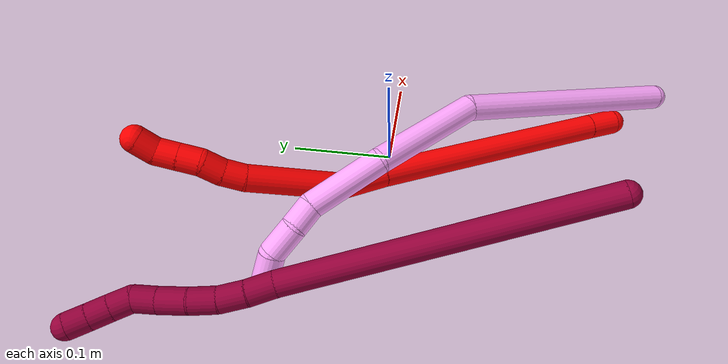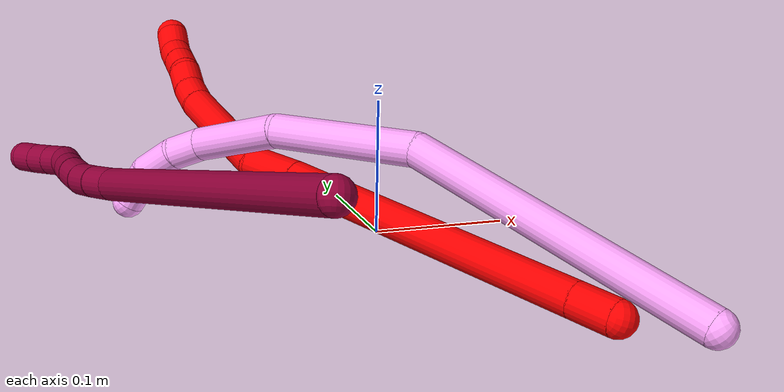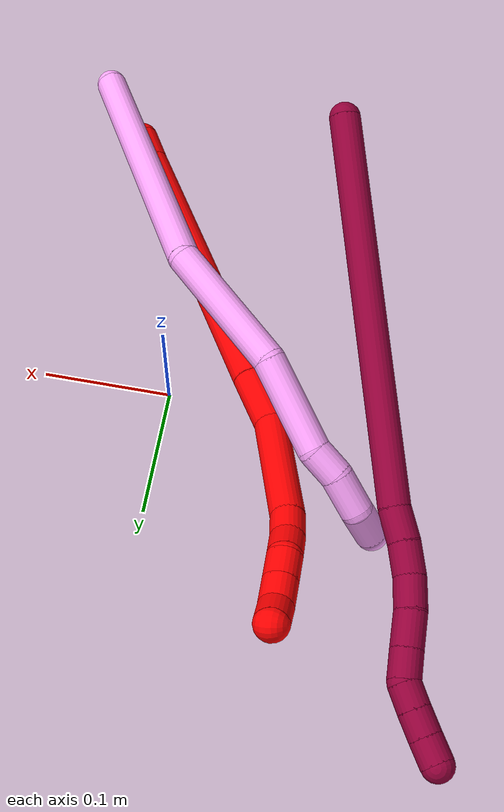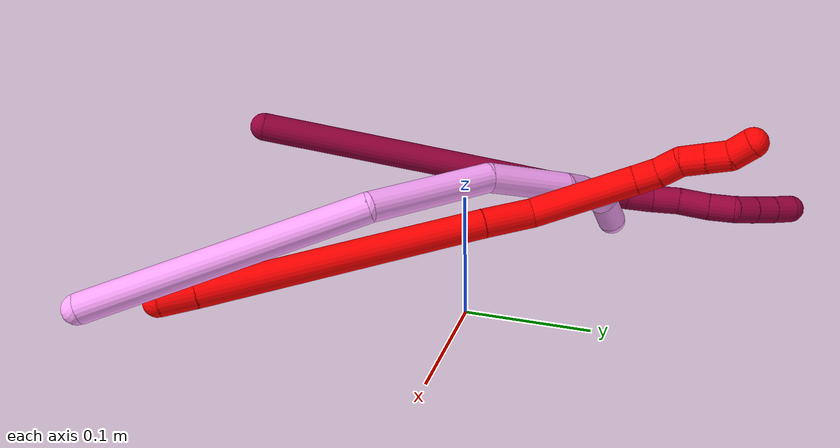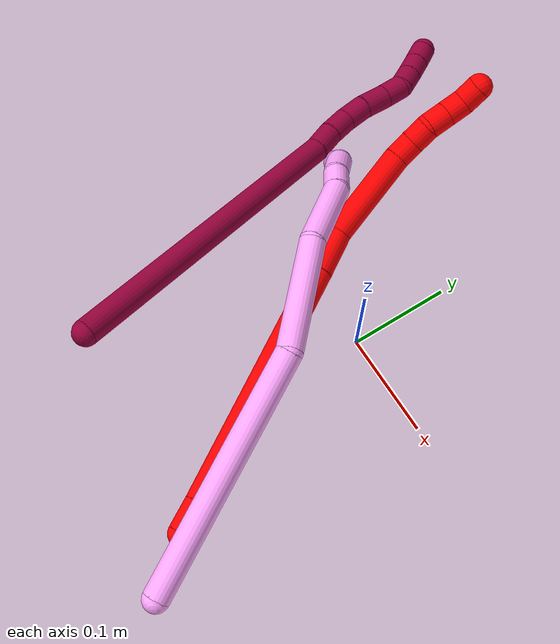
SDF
<sdf version="1.7">
 <world name="default">
  <model name="2">
   <static>0</static>
   <link name="2">
    <collision name="collision-cylinder-e_1_1_4">
     <pose>-0.001662 0.012624 0.007644 -1.02635 -0.112139 0.06324</pose>
     <geometry><cylinder><radius>0.0125</radius><length>0.029701</length></cylinder></geometry>
     <surface>
      <friction><ode><mu>1.16</mu><mu2>1.16</mu2><slip1>0</slip1><slip2>0</slip2></ode></friction>
      <contact><ode><kp>1e+06</kp><kd>1</kd><max_vel>0</max_vel><min_depth>0.001</min_depth></ode></contact>
     </surface>
    </collision>
    <visual name="visual-cylinder-e_1_1_4">
     <pose>-0.001662 0.012624 0.007644 -1.02635 -0.112139 0.06324</pose>
     <geometry><cylinder><radius>0.0125</radius><length>0.029701</length></cylinder></geometry>
     <material><ambient>1 0 0 1</ambient></material>
    </visual>
    <collision name="collision-cylinder-e_2_4_5">
     <pose>-0.015924 0.124143 0.07879 -0.999979 -0.1068 0.058382</pose>
     <geometry><cylinder><radius>0.0125</radius><length>0.236404</length></cylinder></geometry>
     <surface>
      <friction><ode><mu>1.16</mu><mu2>1.16</mu2><slip1>0</slip1><slip2>0</slip2></ode></friction>
      <contact><ode><kp>1e+06</kp><kd>1</kd><max_vel>0</max_vel><min_depth>0.001</min_depth></ode></contact>
     </surface>
    </collision>
    <visual name="visual-cylinder-e_2_4_5">
     <pose>-0.015924 0.124143 0.07879 -0.999979 -0.1068 0.058382</pose>
     <geometry><cylinder><radius>0.0125</radius><length>0.236404</length></cylinder></geometry>
     <material><ambient>1 0 0 1</ambient></material>
    </visual>
    <collision name="collision-cylinder-e_3_5_6">
     <pose>-0.031841 0.240827 0.15409 -0.985228 -0.15417 0.082868</pose>
     <geometry><cylinder><radius>0.0125</radius><length>0.043202</length></cylinder></geometry>
     <surface>
      <friction><ode><mu>1.16</mu><mu2>1.16</mu2><slip1>0</slip1><slip2>0</slip2></ode></friction>
      <contact><ode><kp>1e+06</kp><kd>1</kd><max_vel>0</max_vel><min_depth>0.001</min_depth></ode></contact>
     </surface>
    </collision>
    <visual name="visual-cylinder-e_3_5_6">
     <pose>-0.031841 0.240827 0.15409 -0.985228 -0.15417 0.082868</pose>
     <geometry><cylinder><radius>0.0125</radius><length>0.043202</length></cylinder></geometry>
     <material><ambient>1 0 0 1</ambient></material>
    </visual>
    <collision name="collision-cylinder-e_4_6_7">
     <pose>-0.028851 0.299595 0.183281 -1.16936 0.140743 -0.093241</pose>
     <geometry><cylinder><radius>0.0125</radius><length>0.089925</length></cylinder></geometry>
     <surface>
      <friction><ode><mu>1.16</mu><mu2>1.16</mu2><slip1>0</slip1><slip2>0</slip2></ode></friction>
      <contact><ode><kp>1e+06</kp><kd>1</kd><max_vel>0</max_vel><min_depth>0.001</min_depth></ode></contact>
     </surface>
    </collision>
    <visual name="visual-cylinder-e_4_6_7">
     <pose>-0.028851 0.299595 0.183281 -1.16936 0.140743 -0.093241</pose>
     <geometry><cylinder><radius>0.0125</radius><length>0.089925</length></cylinder></geometry>
     <material><ambient>1 0 0 1</ambient></material>
    </visual>
    <collision name="collision-cylinder-e_5_7_8">
     <pose>-0.019954 0.350157 0.203383 -1.29549 0.2544 -0.192937</pose>
     <geometry><cylinder><radius>0.0125</radius><length>0.02058</length></cylinder></geometry>
     <surface>
      <friction><ode><mu>1.16</mu><mu2>1.16</mu2><slip1>0</slip1><slip2>0</slip2></ode></friction>
      <contact><ode><kp>1e+06</kp><kd>1</kd><max_vel>0</max_vel><min_depth>0.001</min_depth></ode></contact>
     </surface>
    </collision>
    <visual name="visual-cylinder-e_5_7_8">
     <pose>-0.019954 0.350157 0.203383 -1.29549 0.2544 -0.192937</pose>
     <geometry><cylinder><radius>0.0125</radius><length>0.02058</length></cylinder></geometry>
     <material><ambient>1 0 0 1</ambient></material>
    </visual>
    <collision name="collision-cylinder-e_6_8_9">
     <pose>-0.012827 0.368444 0.208359 -1.31574 0.467188 -0.363648</pose>
     <geometry><cylinder><radius>0.0125</radius><length>0.020147</length></cylinder></geometry>
     <surface>
      <friction><ode><mu>1.16</mu><mu2>1.16</mu2><slip1>0</slip1><slip2>0</slip2></ode></friction>
      <contact><ode><kp>1e+06</kp><kd>1</kd><max_vel>0</max_vel><min_depth>0.001</min_depth></ode></contact>
     </surface>
    </collision>
    <visual name="visual-cylinder-e_6_8_9">
     <pose>-0.012827 0.368444 0.208359 -1.31574 0.467188 -0.363648</pose>
     <geometry><cylinder><radius>0.0125</radius><length>0.020147</length></cylinder></geometry>
     <material><ambient>1 0 0 1</ambient></material>
    </visual>
    <collision name="collision-cylinder-e_7_9_10">
     <pose>-0.006922 0.387011 0.211673 -1.46527 0.137049 -0.123336</pose>
     <geometry><cylinder><radius>0.0125</radius><length>0.020027</length></cylinder></geometry>
     <surface>
      <friction><ode><mu>1.16</mu><mu2>1.16</mu2><slip1>0</slip1><slip2>0</slip2></ode></friction>
      <contact><ode><kp>1e+06</kp><kd>1</kd><max_vel>0</max_vel><min_depth>0.001</min_depth></ode></contact>
     </surface>
    </collision>
    <visual name="visual-cylinder-e_7_9_10">
     <pose>-0.006922 0.387011 0.211673 -1.46527 0.137049 -0.123336</pose>
     <geometry><cylinder><radius>0.0125</radius><length>0.020027</length></cylinder></geometry>
     <material><ambient>1 0 0 1</ambient></material>
    </visual>
    <collision name="collision-cylinder-e_8_10_11">
     <pose>-0.004194 0.40673 0.213741 -1.46738 0.136456 -0.123063</pose>
     <geometry><cylinder><radius>0.0125</radius><length>0.020001</length></cylinder></geometry>
     <surface>
      <friction><ode><mu>1.16</mu><mu2>1.16</mu2><slip1>0</slip1><slip2>0</slip2></ode></friction>
      <contact><ode><kp>1e+06</kp><kd>1</kd><max_vel>0</max_vel><min_depth>0.001</min_depth></ode></contact>
     </surface>
    </collision>
    <visual name="visual-cylinder-e_8_10_11">
     <pose>-0.004194 0.40673 0.213741 -1.46738 0.136456 -0.123063</pose>
     <geometry><cylinder><radius>0.0125</radius><length>0.020001</length></cylinder></geometry>
     <material><ambient>1 0 0 1</ambient></material>
    </visual>
    <collision name="collision-cylinder-e_9_11_2">
     <pose>0.002555 0.424792 0.216697 -1.33943 0.568695 -0.454821</pose>
     <geometry><cylinder><radius>0.0125</radius><length>0.020013</length></cylinder></geometry>
     <surface>
      <friction><ode><mu>1.16</mu><mu2>1.16</mu2><slip1>0</slip1><slip2>0</slip2></ode></friction>
      <contact><ode><kp>1e+06</kp><kd>1</kd><max_vel>0</max_vel><min_depth>0.001</min_depth></ode></contact>
     </surface>
    </collision>
    <visual name="visual-cylinder-e_9_11_2">
     <pose>0.002555 0.424792 0.216697 -1.33943 0.568695 -0.454821</pose>
     <geometry><cylinder><radius>0.0125</radius><length>0.020013</length></cylinder></geometry>
     <material><ambient>1 0 0 1</ambient></material>
    </visual>
    <collision name="collision-sphere-2">
     <pose>0.007944 0.432999 0.218631 0 -0 0</pose>
     <geometry><sphere><radius>0.0125</radius></sphere></geometry>
     <surface>
      <friction><ode><mu>1.16</mu><mu2>1.16</mu2><slip1>0</slip1><slip2>0</slip2></ode></friction>
      <contact><ode><kp>1e+06</kp><kd>1</kd><max_vel>0</max_vel><min_depth>0.001</min_depth></ode></contact>
     </surface>
    </collision>
    <visual name="visual-sphere-2">
     <pose>0.007944 0.432999 0.218631 0 -0 0</pose>
     <geometry><sphere><radius>0.0125</radius></sphere></geometry>
     <material><ambient>1 0 0 1</ambient></material>
    </visual>
    <collision name="collision-sphere-11">
     <pose>-0.002833 0.416585 0.214764 0 -0 0</pose>
     <geometry><sphere><radius>0.0125</radius></sphere></geometry>
     <surface>
      <friction><ode><mu>1.16</mu><mu2>1.16</mu2><slip1>0</slip1><slip2>0</slip2></ode></friction>
      <contact><ode><kp>1e+06</kp><kd>1</kd><max_vel>0</max_vel><min_depth>0.001</min_depth></ode></contact>
     </surface>
    </collision>
    <visual name="visual-sphere-11">
     <pose>-0.002833 0.416585 0.214764 0 -0 0</pose>
     <geometry><sphere><radius>0.0125</radius></sphere></geometry>
     <material><ambient>1 0 0 1</ambient></material>
    </visual>
    <collision name="collision-sphere-10">
     <pose>-0.005554 0.396876 0.212718 0 -0 0</pose>
     <geometry><sphere><radius>0.0125</radius></sphere></geometry>
     <surface>
      <friction><ode><mu>1.16</mu><mu2>1.16</mu2><slip1>0</slip1><slip2>0</slip2></ode></friction>
      <contact><ode><kp>1e+06</kp><kd>1</kd><max_vel>0</max_vel><min_depth>0.001</min_depth></ode></contact>
     </surface>
    </collision>
    <visual name="visual-sphere-10">
     <pose>-0.005554 0.396876 0.212718 0 -0 0</pose>
     <geometry><sphere><radius>0.0125</radius></sphere></geometry>
     <material><ambient>1 0 0 1</ambient></material>
    </visual>
    <collision name="collision-sphere-9">
     <pose>-0.00829 0.377147 0.210629 0 -0 0</pose>
     <geometry><sphere><radius>0.0125</radius></sphere></geometry>
     <surface>
      <friction><ode><mu>1.16</mu><mu2>1.16</mu2><slip1>0</slip1><slip2>0</slip2></ode></friction>
      <contact><ode><kp>1e+06</kp><kd>1</kd><max_vel>0</max_vel><min_depth>0.001</min_depth></ode></contact>
     </surface>
    </collision>
    <visual name="visual-sphere-9">
     <pose>-0.00829 0.377147 0.210629 0 -0 0</pose>
     <geometry><sphere><radius>0.0125</radius></sphere></geometry>
     <material><ambient>1 0 0 1</ambient></material>
    </visual>
    <collision name="collision-sphere-4">
     <pose>-0.003324 0.025248 0.015287 0 -0 0</pose>
     <geometry><sphere><radius>0.0125</radius></sphere></geometry>
     <surface>
      <friction><ode><mu>1.16</mu><mu2>1.16</mu2><slip1>0</slip1><slip2>0</slip2></ode></friction>
      <contact><ode><kp>1e+06</kp><kd>1</kd><max_vel>0</max_vel><min_depth>0.001</min_depth></ode></contact>
     </surface>
    </collision>
    <visual name="visual-sphere-4">
     <pose>-0.003324 0.025248 0.015287 0 -0 0</pose>
     <geometry><sphere><radius>0.0125</radius></sphere></geometry>
     <material><ambient>1 0 0 1</ambient></material>
    </visual>
    <collision name="collision-sphere-1">
     <geometry><sphere><radius>0.0125</radius></sphere></geometry>
     <surface>
      <friction><ode><mu>1.16</mu><mu2>1.16</mu2><slip1>0</slip1><slip2>0</slip2></ode></friction>
      <contact><ode><kp>1e+06</kp><kd>1</kd><max_vel>0</max_vel><min_depth>0.001</min_depth></ode></contact>
     </surface>
    </collision>
    <visual name="visual-sphere-1">
     <geometry><sphere><radius>0.0125</radius></sphere></geometry>
     <material><ambient>1 0 0 1</ambient></material>
    </visual>
    <collision name="collision-sphere-8">
     <pose>-0.017364 0.359741 0.20609 0 -0 0</pose>
     <geometry><sphere><radius>0.0125</radius></sphere></geometry>
     <surface>
      <friction><ode><mu>1.16</mu><mu2>1.16</mu2><slip1>0</slip1><slip2>0</slip2></ode></friction>
      <contact><ode><kp>1e+06</kp><kd>1</kd><max_vel>0</max_vel><min_depth>0.001</min_depth></ode></contact>
     </surface>
    </collision>
    <visual name="visual-sphere-8">
     <pose>-0.017364 0.359741 0.20609 0 -0 0</pose>
     <geometry><sphere><radius>0.0125</radius></sphere></geometry>
     <material><ambient>1 0 0 1</ambient></material>
    </visual>
    <collision name="collision-sphere-5">
     <pose>-0.028524 0.223038 0.142293 0 -0 0</pose>
     <geometry><sphere><radius>0.0125</radius></sphere></geometry>
     <surface>
      <friction><ode><mu>1.16</mu><mu2>1.16</mu2><slip1>0</slip1><slip2>0</slip2></ode></friction>
      <contact><ode><kp>1e+06</kp><kd>1</kd><max_vel>0</max_vel><min_depth>0.001</min_depth></ode></contact>
     </surface>
    </collision>
    <visual name="visual-sphere-5">
     <pose>-0.028524 0.223038 0.142293 0 -0 0</pose>
     <geometry><sphere><radius>0.0125</radius></sphere></geometry>
     <material><ambient>1 0 0 1</ambient></material>
    </visual>
    <collision name="collision-sphere-6">
     <pose>-0.035158 0.258616 0.165886 0 -0 0</pose>
     <geometry><sphere><radius>0.0125</radius></sphere></geometry>
     <surface>
      <friction><ode><mu>1.16</mu><mu2>1.16</mu2><slip1>0</slip1><slip2>0</slip2></ode></friction>
      <contact><ode><kp>1e+06</kp><kd>1</kd><max_vel>0</max_vel><min_depth>0.001</min_depth></ode></contact>
     </surface>
    </collision>
    <visual name="visual-sphere-6">
     <pose>-0.035158 0.258616 0.165886 0 -0 0</pose>
     <geometry><sphere><radius>0.0125</radius></sphere></geometry>
     <material><ambient>1 0 0 1</ambient></material>
    </visual>
    <collision name="collision-sphere-7">
     <pose>-0.022543 0.340573 0.200676 0 -0 0</pose>
     <geometry><sphere><radius>0.0125</radius></sphere></geometry>
     <surface>
      <friction><ode><mu>1.16</mu><mu2>1.16</mu2><slip1>0</slip1><slip2>0</slip2></ode></friction>
      <contact><ode><kp>1e+06</kp><kd>1</kd><max_vel>0</max_vel><min_depth>0.001</min_depth></ode></contact>
     </surface>
    </collision>
    <visual name="visual-sphere-7">
     <pose>-0.022543 0.340573 0.200676 0 -0 0</pose>
     <geometry><sphere><radius>0.0125</radius></sphere></geometry>
     <material><ambient>1 0 0 1</ambient></material>
    </visual>
    <inertial>
     <pose>-0.017248 0.212169 0.126452 0 -0 0</pose>
     <mass>0.5</mass>
     <inertia>
      <ixx>0.001242</ixx>
      <ixy>0</ixy>
      <ixz>0</ixz>
      <iyy>0.00073</iyy>
      <iyz>0</iyz>
      <izz>-0.000878</izz>
     </inertia>
    </inertial>
   </link>
   <pose>0.070719 -0.230432 0.011963 0.246203 -1.24076 -0.278368</pose>
  </model>
  <model name="4">
   <static>0</static>
   <link name="4">
    <collision name="collision-cylinder-e_1_1_4">
     <pose>0.023816 0.093178 -0.06592 -2.18651 0.205707 -0.393751</pose>
     <geometry><cylinder><radius>0.0125</radius><length>0.233194</length></cylinder></geometry>
     <surface>
      <friction><ode><mu>1.16</mu><mu2>1.16</mu2><slip1>0</slip1><slip2>0</slip2></ode></friction>
      <contact><ode><kp>1e+06</kp><kd>1</kd><max_vel>0</max_vel><min_depth>0.001</min_depth></ode></contact>
     </surface>
    </collision>
    <visual name="visual-cylinder-e_1_1_4">
     <pose>0.023816 0.093178 -0.06592 -2.18651 0.205707 -0.393751</pose>
     <geometry><cylinder><radius>0.0125</radius><length>0.233194</length></cylinder></geometry>
     <material><ambient>1 0.65098 0.996078 1</ambient></material>
    </visual>
    <collision name="collision-cylinder-e_2_4_5">
     <pose>0.044116 0.219089 -0.175114 -2.49399 -0.064717 0.192305</pose>
     <geometry><cylinder><radius>0.0125</radius><length>0.108744</length></cylinder></geometry>
     <surface>
      <friction><ode><mu>1.16</mu><mu2>1.16</mu2><slip1>0</slip1><slip2>0</slip2></ode></friction>
      <contact><ode><kp>1e+06</kp><kd>1</kd><max_vel>0</max_vel><min_depth>0.001</min_depth></ode></contact>
     </surface>
    </collision>
    <visual name="visual-cylinder-e_2_4_5">
     <pose>0.044116 0.219089 -0.175114 -2.49399 -0.064717 0.192305</pose>
     <geometry><cylinder><radius>0.0125</radius><length>0.108744</length></cylinder></geometry>
     <material><ambient>1 0.65098 0.996078 1</ambient></material>
    </visual>
    <collision name="collision-cylinder-e_3_5_6">
     <pose>0.045039 0.265428 -0.2524 -2.76107 0.120592 -0.607515</pose>
     <geometry><cylinder><radius>0.0125</radius><length>0.073803</length></cylinder></geometry>
     <surface>
      <friction><ode><mu>1.16</mu><mu2>1.16</mu2><slip1>0</slip1><slip2>0</slip2></ode></friction>
      <contact><ode><kp>1e+06</kp><kd>1</kd><max_vel>0</max_vel><min_depth>0.001</min_depth></ode></contact>
     </surface>
    </collision>
    <visual name="visual-cylinder-e_3_5_6">
     <pose>0.045039 0.265428 -0.2524 -2.76107 0.120592 -0.607515</pose>
     <geometry><cylinder><radius>0.0125</radius><length>0.073803</length></cylinder></geometry>
     <material><ambient>1 0.65098 0.996078 1</ambient></material>
    </visual>
    <collision name="collision-cylinder-e_4_6_7">
     <pose>0.047434 0.281729 -0.298037 -2.9137 -0.169667 1.2781</pose>
     <geometry><cylinder><radius>0.0125</radius><length>0.024213</length></cylinder></geometry>
     <surface>
      <friction><ode><mu>1.16</mu><mu2>1.16</mu2><slip1>0</slip1><slip2>0</slip2></ode></friction>
      <contact><ode><kp>1e+06</kp><kd>1</kd><max_vel>0</max_vel><min_depth>0.001</min_depth></ode></contact>
     </surface>
    </collision>
    <visual name="visual-cylinder-e_4_6_7">
     <pose>0.047434 0.281729 -0.298037 -2.9137 -0.169667 1.2781</pose>
     <geometry><cylinder><radius>0.0125</radius><length>0.024213</length></cylinder></geometry>
     <material><ambient>1 0.65098 0.996078 1</ambient></material>
    </visual>
    <collision name="collision-cylinder-e_5_7_8">
     <pose>0.045589 0.285149 -0.325013 -3.09447 0.012984 -0.537649</pose>
     <geometry><cylinder><radius>0.0125</radius><length>0.030739</length></cylinder></geometry>
     <surface>
      <friction><ode><mu>1.16</mu><mu2>1.16</mu2><slip1>0</slip1><slip2>0</slip2></ode></friction>
      <contact><ode><kp>1e+06</kp><kd>1</kd><max_vel>0</max_vel><min_depth>0.001</min_depth></ode></contact>
     </surface>
    </collision>
    <visual name="visual-cylinder-e_5_7_8">
     <pose>0.045589 0.285149 -0.325013 -3.09447 0.012984 -0.537649</pose>
     <geometry><cylinder><radius>0.0125</radius><length>0.030739</length></cylinder></geometry>
     <material><ambient>1 0.65098 0.996078 1</ambient></material>
    </visual>
    <collision name="collision-cylinder-e_6_8_2">
     <pose>0.044535 0.280041 -0.353747 2.73062 -0.085632 -0.40545</pose>
     <geometry><cylinder><radius>0.0125</radius><length>0.029306</length></cylinder></geometry>
     <surface>
      <friction><ode><mu>1.16</mu><mu2>1.16</mu2><slip1>0</slip1><slip2>0</slip2></ode></friction>
      <contact><ode><kp>1e+06</kp><kd>1</kd><max_vel>0</max_vel><min_depth>0.001</min_depth></ode></contact>
     </surface>
    </collision>
    <visual name="visual-cylinder-e_6_8_2">
     <pose>0.044535 0.280041 -0.353747 2.73062 -0.085632 -0.40545</pose>
     <geometry><cylinder><radius>0.0125</radius><length>0.029306</length></cylinder></geometry>
     <material><ambient>1 0.65098 0.996078 1</ambient></material>
    </visual>
    <collision name="collision-sphere-2">
     <pose>0.043282 0.274208 -0.367131 0 -0 0</pose>
     <geometry><sphere><radius>0.0125</radius></sphere></geometry>
     <surface>
      <friction><ode><mu>1.16</mu><mu2>1.16</mu2><slip1>0</slip1><slip2>0</slip2></ode></friction>
      <contact><ode><kp>1e+06</kp><kd>1</kd><max_vel>0</max_vel><min_depth>0.001</min_depth></ode></contact>
     </surface>
    </collision>
    <visual name="visual-sphere-2">
     <pose>0.043282 0.274208 -0.367131 0 -0 0</pose>
     <geometry><sphere><radius>0.0125</radius></sphere></geometry>
     <material><ambient>1 0.65098 0.996078 1</ambient></material>
    </visual>
    <collision name="collision-sphere-4">
     <pose>0.047632 0.186357 -0.131841 0 -0 0</pose>
     <geometry><sphere><radius>0.0125</radius></sphere></geometry>
     <surface>
      <friction><ode><mu>1.16</mu><mu2>1.16</mu2><slip1>0</slip1><slip2>0</slip2></ode></friction>
      <contact><ode><kp>1e+06</kp><kd>1</kd><max_vel>0</max_vel><min_depth>0.001</min_depth></ode></contact>
     </surface>
    </collision>
    <visual name="visual-sphere-4">
     <pose>0.047632 0.186357 -0.131841 0 -0 0</pose>
     <geometry><sphere><radius>0.0125</radius></sphere></geometry>
     <material><ambient>1 0.65098 0.996078 1</ambient></material>
    </visual>
    <collision name="collision-sphere-1">
     <geometry><sphere><radius>0.0125</radius></sphere></geometry>
     <surface>
      <friction><ode><mu>1.16</mu><mu2>1.16</mu2><slip1>0</slip1><slip2>0</slip2></ode></friction>
      <contact><ode><kp>1e+06</kp><kd>1</kd><max_vel>0</max_vel><min_depth>0.001</min_depth></ode></contact>
     </surface>
    </collision>
    <visual name="visual-sphere-1">
     <geometry><sphere><radius>0.0125</radius></sphere></geometry>
     <material><ambient>1 0.65098 0.996078 1</ambient></material>
    </visual>
    <collision name="collision-sphere-8">
     <pose>0.045789 0.285873 -0.340364 0 -0 0</pose>
     <geometry><sphere><radius>0.0125</radius></sphere></geometry>
     <surface>
      <friction><ode><mu>1.16</mu><mu2>1.16</mu2><slip1>0</slip1><slip2>0</slip2></ode></friction>
      <contact><ode><kp>1e+06</kp><kd>1</kd><max_vel>0</max_vel><min_depth>0.001</min_depth></ode></contact>
     </surface>
    </collision>
    <visual name="visual-sphere-8">
     <pose>0.045789 0.285873 -0.340364 0 -0 0</pose>
     <geometry><sphere><radius>0.0125</radius></sphere></geometry>
     <material><ambient>1 0.65098 0.996078 1</ambient></material>
    </visual>
    <collision name="collision-sphere-5">
     <pose>0.040599 0.251822 -0.218387 0 -0 0</pose>
     <geometry><sphere><radius>0.0125</radius></sphere></geometry>
     <surface>
      <friction><ode><mu>1.16</mu><mu2>1.16</mu2><slip1>0</slip1><slip2>0</slip2></ode></friction>
      <contact><ode><kp>1e+06</kp><kd>1</kd><max_vel>0</max_vel><min_depth>0.001</min_depth></ode></contact>
     </surface>
    </collision>
    <visual name="visual-sphere-5">
     <pose>0.040599 0.251822 -0.218387 0 -0 0</pose>
     <geometry><sphere><radius>0.0125</radius></sphere></geometry>
     <material><ambient>1 0.65098 0.996078 1</ambient></material>
    </visual>
    <collision name="collision-sphere-6">
     <pose>0.049478 0.279034 -0.286413 0 -0 0</pose>
     <geometry><sphere><radius>0.0125</radius></sphere></geometry>
     <surface>
      <friction><ode><mu>1.16</mu><mu2>1.16</mu2><slip1>0</slip1><slip2>0</slip2></ode></friction>
      <contact><ode><kp>1e+06</kp><kd>1</kd><max_vel>0</max_vel><min_depth>0.001</min_depth></ode></contact>
     </surface>
    </collision>
    <visual name="visual-sphere-6">
     <pose>0.049478 0.279034 -0.286413 0 -0 0</pose>
     <geometry><sphere><radius>0.0125</radius></sphere></geometry>
     <material><ambient>1 0.65098 0.996078 1</ambient></material>
    </visual>
    <collision name="collision-sphere-7">
     <pose>0.045389 0.284425 -0.309662 0 -0 0</pose>
     <geometry><sphere><radius>0.0125</radius></sphere></geometry>
     <surface>
      <friction><ode><mu>1.16</mu><mu2>1.16</mu2><slip1>0</slip1><slip2>0</slip2></ode></friction>
      <contact><ode><kp>1e+06</kp><kd>1</kd><max_vel>0</max_vel><min_depth>0.001</min_depth></ode></contact>
     </surface>
    </collision>
    <visual name="visual-sphere-7">
     <pose>0.045389 0.284425 -0.309662 0 -0 0</pose>
     <geometry><sphere><radius>0.0125</radius></sphere></geometry>
     <material><ambient>1 0.65098 0.996078 1</ambient></material>
    </visual>
    <inertial>
     <pose>0.03506 0.177873 -0.161233 0 -0 0</pose>
     <mass>0.5</mass>
     <inertia>
      <ixx>0.000712</ixx>
      <ixy>0</ixy>
      <ixz>0</ixz>
      <iyy>-0.000999</iyy>
      <iyz>0</iyz>
      <izz>-0.001175</izz>
     </inertia>
    </inertial>
   </link>
   <pose>0.107325 -0.275227 0.01951 0.923698 0.1259 0.745602</pose>
  </model>
  <model name="8">
   <static>0</static>
   <link name="8">
    <collision name="collision-cylinder-e_1_1_4">
     <pose>-0.108186 0.110604 -0.020282 -1.75216 -0.766081 0.900806</pose>
     <geometry><cylinder><radius>0.0125</radius><length>0.312082</length></cylinder></geometry>
     <surface>
      <friction><ode><mu>1.16</mu><mu2>1.16</mu2><slip1>0</slip1><slip2>0</slip2></ode></friction>
      <contact><ode><kp>1e+06</kp><kd>1</kd><max_vel>0</max_vel><min_depth>0.001</min_depth></ode></contact>
     </surface>
    </collision>
    <visual name="visual-cylinder-e_1_1_4">
     <pose>-0.108186 0.110604 -0.020282 -1.75216 -0.766081 0.900806</pose>
     <geometry><cylinder><radius>0.0125</radius><length>0.312082</length></cylinder></geometry>
     <material><ambient>0.584314 0 0.227451 1</ambient></material>
    </visual>
    <collision name="collision-cylinder-e_2_4_5">
     <pose>-0.223888 0.231741 -0.04273 -1.77359 -0.610059 0.73708</pose>
     <geometry><cylinder><radius>0.0125</radius><length>0.026241</length></cylinder></geometry>
     <surface>
      <friction><ode><mu>1.16</mu><mu2>1.16</mu2><slip1>0</slip1><slip2>0</slip2></ode></friction>
      <contact><ode><kp>1e+06</kp><kd>1</kd><max_vel>0</max_vel><min_depth>0.001</min_depth></ode></contact>
     </surface>
    </collision>
    <visual name="visual-cylinder-e_2_4_5">
     <pose>-0.223888 0.231741 -0.04273 -1.77359 -0.610059 0.73708</pose>
     <geometry><cylinder><radius>0.0125</radius><length>0.026241</length></cylinder></geometry>
     <material><ambient>0.584314 0 0.227451 1</ambient></material>
    </visual>
    <collision name="collision-cylinder-e_3_5_6">
     <pose>-0.239716 0.251525 -0.047306 -1.82562 -0.715677 0.901239</pose>
     <geometry><cylinder><radius>0.0125</radius><length>0.025332</length></cylinder></geometry>
     <surface>
      <friction><ode><mu>1.16</mu><mu2>1.16</mu2><slip1>0</slip1><slip2>0</slip2></ode></friction>
      <contact><ode><kp>1e+06</kp><kd>1</kd><max_vel>0</max_vel><min_depth>0.001</min_depth></ode></contact>
     </surface>
    </collision>
    <visual name="visual-cylinder-e_3_5_6">
     <pose>-0.239716 0.251525 -0.047306 -1.82562 -0.715677 0.901239</pose>
     <geometry><cylinder><radius>0.0125</radius><length>0.025332</length></cylinder></geometry>
     <material><ambient>0.584314 0 0.227451 1</ambient></material>
    </visual>
    <collision name="collision-cylinder-e_4_6_7">
     <pose>-0.256947 0.268626 -0.053934 -2.06386 -0.78581 1.21229</pose>
     <geometry><cylinder><radius>0.0125</radius><length>0.025221</length></cylinder></geometry>
     <surface>
      <friction><ode><mu>1.16</mu><mu2>1.16</mu2><slip1>0</slip1><slip2>0</slip2></ode></friction>
      <contact><ode><kp>1e+06</kp><kd>1</kd><max_vel>0</max_vel><min_depth>0.001</min_depth></ode></contact>
     </surface>
    </collision>
    <visual name="visual-cylinder-e_4_6_7">
     <pose>-0.256947 0.268626 -0.053934 -2.06386 -0.78581 1.21229</pose>
     <geometry><cylinder><radius>0.0125</radius><length>0.025221</length></cylinder></geometry>
     <material><ambient>0.584314 0 0.227451 1</ambient></material>
    </visual>
    <collision name="collision-cylinder-e_5_7_8">
     <pose>-0.277028 0.283832 -0.062215 -2.07541 -0.925478 1.40366</pose>
     <geometry><cylinder><radius>0.0125</radius><length>0.027937</length></cylinder></geometry>
     <surface>
      <friction><ode><mu>1.16</mu><mu2>1.16</mu2><slip1>0</slip1><slip2>0</slip2></ode></friction>
      <contact><ode><kp>1e+06</kp><kd>1</kd><max_vel>0</max_vel><min_depth>0.001</min_depth></ode></contact>
     </surface>
    </collision>
    <visual name="visual-cylinder-e_5_7_8">
     <pose>-0.277028 0.283832 -0.062215 -2.07541 -0.925478 1.40366</pose>
     <geometry><cylinder><radius>0.0125</radius><length>0.027937</length></cylinder></geometry>
     <material><ambient>0.584314 0 0.227451 1</ambient></material>
    </visual>
    <collision name="collision-cylinder-e_6_8_9">
     <pose>-0.29698 0.297314 -0.070628 -2.18827 -0.863585 1.45715</pose>
     <geometry><cylinder><radius>0.0125</radius><length>0.023134</length></cylinder></geometry>
     <surface>
      <friction><ode><mu>1.16</mu><mu2>1.16</mu2><slip1>0</slip1><slip2>0</slip2></ode></friction>
      <contact><ode><kp>1e+06</kp><kd>1</kd><max_vel>0</max_vel><min_depth>0.001</min_depth></ode></contact>
     </surface>
    </collision>
    <visual name="visual-cylinder-e_6_8_9">
     <pose>-0.29698 0.297314 -0.070628 -2.18827 -0.863585 1.45715</pose>
     <geometry><cylinder><radius>0.0125</radius><length>0.023134</length></cylinder></geometry>
     <material><ambient>0.584314 0 0.227451 1</ambient></material>
    </visual>
    <collision name="collision-cylinder-e_7_9_10">
     <pose>-0.310776 0.311997 -0.076341 -1.72867 -0.523641 0.608514</pose>
     <geometry><cylinder><radius>0.0125</radius><length>0.020008</length></cylinder></geometry>
     <surface>
      <friction><ode><mu>1.16</mu><mu2>1.16</mu2><slip1>0</slip1><slip2>0</slip2></ode></friction>
      <contact><ode><kp>1e+06</kp><kd>1</kd><max_vel>0</max_vel><min_depth>0.001</min_depth></ode></contact>
     </surface>
    </collision>
    <visual name="visual-cylinder-e_7_9_10">
     <pose>-0.310776 0.311997 -0.076341 -1.72867 -0.523641 0.608514</pose>
     <geometry><cylinder><radius>0.0125</radius><length>0.020008</length></cylinder></geometry>
     <material><ambient>0.584314 0 0.227451 1</ambient></material>
    </visual>
    <collision name="collision-cylinder-e_8_10_11">
     <pose>-0.320487 0.329272 -0.079125 -1.73241 -0.489741 0.571746</pose>
     <geometry><cylinder><radius>0.0125</radius><length>0.020022</length></cylinder></geometry>
     <surface>
      <friction><ode><mu>1.16</mu><mu2>1.16</mu2><slip1>0</slip1><slip2>0</slip2></ode></friction>
      <contact><ode><kp>1e+06</kp><kd>1</kd><max_vel>0</max_vel><min_depth>0.001</min_depth></ode></contact>
     </surface>
    </collision>
    <visual name="visual-cylinder-e_8_10_11">
     <pose>-0.320487 0.329272 -0.079125 -1.73241 -0.489741 0.571746</pose>
     <geometry><cylinder><radius>0.0125</radius><length>0.020022</length></cylinder></geometry>
     <material><ambient>0.584314 0 0.227451 1</ambient></material>
    </visual>
    <collision name="collision-cylinder-e_9_11_2">
     <pose>-0.329669 0.346785 -0.082245 -1.76164 -0.463145 0.556606</pose>
     <geometry><cylinder><radius>0.0125</radius><length>0.020022</length></cylinder></geometry>
     <surface>
      <friction><ode><mu>1.16</mu><mu2>1.16</mu2><slip1>0</slip1><slip2>0</slip2></ode></friction>
      <contact><ode><kp>1e+06</kp><kd>1</kd><max_vel>0</max_vel><min_depth>0.001</min_depth></ode></contact>
     </surface>
    </collision>
    <visual name="visual-cylinder-e_9_11_2">
     <pose>-0.329669 0.346785 -0.082245 -1.76164 -0.463145 0.556606</pose>
     <geometry><cylinder><radius>0.0125</radius><length>0.020022</length></cylinder></geometry>
     <material><ambient>0.584314 0 0.227451 1</ambient></material>
    </visual>
    <collision name="collision-sphere-2">
     <pose>-0.334142 0.355579 -0.083944 0 -0 0</pose>
     <geometry><sphere><radius>0.0125</radius></sphere></geometry>
     <surface>
      <friction><ode><mu>1.16</mu><mu2>1.16</mu2><slip1>0</slip1><slip2>0</slip2></ode></friction>
      <contact><ode><kp>1e+06</kp><kd>1</kd><max_vel>0</max_vel><min_depth>0.001</min_depth></ode></contact>
     </surface>
    </collision>
    <visual name="visual-sphere-2">
     <pose>-0.334142 0.355579 -0.083944 0 -0 0</pose>
     <geometry><sphere><radius>0.0125</radius></sphere></geometry>
     <material><ambient>0.584314 0 0.227451 1</ambient></material>
    </visual>
    <collision name="collision-sphere-11">
     <pose>-0.325196 0.337991 -0.080546 0 -0 0</pose>
     <geometry><sphere><radius>0.0125</radius></sphere></geometry>
     <surface>
      <friction><ode><mu>1.16</mu><mu2>1.16</mu2><slip1>0</slip1><slip2>0</slip2></ode></friction>
      <contact><ode><kp>1e+06</kp><kd>1</kd><max_vel>0</max_vel><min_depth>0.001</min_depth></ode></contact>
     </surface>
    </collision>
    <visual name="visual-sphere-11">
     <pose>-0.325196 0.337991 -0.080546 0 -0 0</pose>
     <geometry><sphere><radius>0.0125</radius></sphere></geometry>
     <material><ambient>0.584314 0 0.227451 1</ambient></material>
    </visual>
    <collision name="collision-sphere-10">
     <pose>-0.315778 0.320553 -0.077703 0 -0 0</pose>
     <geometry><sphere><radius>0.0125</radius></sphere></geometry>
     <surface>
      <friction><ode><mu>1.16</mu><mu2>1.16</mu2><slip1>0</slip1><slip2>0</slip2></ode></friction>
      <contact><ode><kp>1e+06</kp><kd>1</kd><max_vel>0</max_vel><min_depth>0.001</min_depth></ode></contact>
     </surface>
    </collision>
    <visual name="visual-sphere-10">
     <pose>-0.315778 0.320553 -0.077703 0 -0 0</pose>
     <geometry><sphere><radius>0.0125</radius></sphere></geometry>
     <material><ambient>0.584314 0 0.227451 1</ambient></material>
    </visual>
    <collision name="collision-sphere-9">
     <pose>-0.305773 0.303441 -0.074979 0 -0 0</pose>
     <geometry><sphere><radius>0.0125</radius></sphere></geometry>
     <surface>
      <friction><ode><mu>1.16</mu><mu2>1.16</mu2><slip1>0</slip1><slip2>0</slip2></ode></friction>
      <contact><ode><kp>1e+06</kp><kd>1</kd><max_vel>0</max_vel><min_depth>0.001</min_depth></ode></contact>
     </surface>
    </collision>
    <visual name="visual-sphere-9">
     <pose>-0.305773 0.303441 -0.074979 0 -0 0</pose>
     <geometry><sphere><radius>0.0125</radius></sphere></geometry>
     <material><ambient>0.584314 0 0.227451 1</ambient></material>
    </visual>
    <collision name="collision-sphere-4">
     <pose>-0.216371 0.221208 -0.040565 0 -0 0</pose>
     <geometry><sphere><radius>0.0125</radius></sphere></geometry>
     <surface>
      <friction><ode><mu>1.16</mu><mu2>1.16</mu2><slip1>0</slip1><slip2>0</slip2></ode></friction>
      <contact><ode><kp>1e+06</kp><kd>1</kd><max_vel>0</max_vel><min_depth>0.001</min_depth></ode></contact>
     </surface>
    </collision>
    <visual name="visual-sphere-4">
     <pose>-0.216371 0.221208 -0.040565 0 -0 0</pose>
     <geometry><sphere><radius>0.0125</radius></sphere></geometry>
     <material><ambient>0.584314 0 0.227451 1</ambient></material>
    </visual>
    <collision name="collision-sphere-1">
     <geometry><sphere><radius>0.0125</radius></sphere></geometry>
     <surface>
      <friction><ode><mu>1.16</mu><mu2>1.16</mu2><slip1>0</slip1><slip2>0</slip2></ode></friction>
      <contact><ode><kp>1e+06</kp><kd>1</kd><max_vel>0</max_vel><min_depth>0.001</min_depth></ode></contact>
     </surface>
    </collision>
    <visual name="visual-sphere-1">
     <geometry><sphere><radius>0.0125</radius></sphere></geometry>
     <material><ambient>0.584314 0 0.227451 1</ambient></material>
    </visual>
    <collision name="collision-sphere-8">
     <pose>-0.288187 0.291186 -0.066277 0 -0 0</pose>
     <geometry><sphere><radius>0.0125</radius></sphere></geometry>
     <surface>
      <friction><ode><mu>1.16</mu><mu2>1.16</mu2><slip1>0</slip1><slip2>0</slip2></ode></friction>
      <contact><ode><kp>1e+06</kp><kd>1</kd><max_vel>0</max_vel><min_depth>0.001</min_depth></ode></contact>
     </surface>
    </collision>
    <visual name="visual-sphere-8">
     <pose>-0.288187 0.291186 -0.066277 0 -0 0</pose>
     <geometry><sphere><radius>0.0125</radius></sphere></geometry>
     <material><ambient>0.584314 0 0.227451 1</ambient></material>
    </visual>
    <collision name="collision-sphere-5">
     <pose>-0.231405 0.242275 -0.044896 0 -0 0</pose>
     <geometry><sphere><radius>0.0125</radius></sphere></geometry>
     <surface>
      <friction><ode><mu>1.16</mu><mu2>1.16</mu2><slip1>0</slip1><slip2>0</slip2></ode></friction>
      <contact><ode><kp>1e+06</kp><kd>1</kd><max_vel>0</max_vel><min_depth>0.001</min_depth></ode></contact>
     </surface>
    </collision>
    <visual name="visual-sphere-5">
     <pose>-0.231405 0.242275 -0.044896 0 -0 0</pose>
     <geometry><sphere><radius>0.0125</radius></sphere></geometry>
     <material><ambient>0.584314 0 0.227451 1</ambient></material>
    </visual>
    <collision name="collision-sphere-6">
     <pose>-0.248026 0.260774 -0.049715 0 -0 0</pose>
     <geometry><sphere><radius>0.0125</radius></sphere></geometry>
     <surface>
      <friction><ode><mu>1.16</mu><mu2>1.16</mu2><slip1>0</slip1><slip2>0</slip2></ode></friction>
      <contact><ode><kp>1e+06</kp><kd>1</kd><max_vel>0</max_vel><min_depth>0.001</min_depth></ode></contact>
     </surface>
    </collision>
    <visual name="visual-sphere-6">
     <pose>-0.248026 0.260774 -0.049715 0 -0 0</pose>
     <geometry><sphere><radius>0.0125</radius></sphere></geometry>
     <material><ambient>0.584314 0 0.227451 1</ambient></material>
    </visual>
    <collision name="collision-sphere-7">
     <pose>-0.265868 0.276478 -0.058153 0 -0 0</pose>
     <geometry><sphere><radius>0.0125</radius></sphere></geometry>
     <surface>
      <friction><ode><mu>1.16</mu><mu2>1.16</mu2><slip1>0</slip1><slip2>0</slip2></ode></friction>
      <contact><ode><kp>1e+06</kp><kd>1</kd><max_vel>0</max_vel><min_depth>0.001</min_depth></ode></contact>
     </surface>
    </collision>
    <visual name="visual-sphere-7">
     <pose>-0.265868 0.276478 -0.058153 0 -0 0</pose>
     <geometry><sphere><radius>0.0125</radius></sphere></geometry>
     <material><ambient>0.584314 0 0.227451 1</ambient></material>
    </visual>
    <inertial>
     <pose>-0.172072 0.176663 -0.03628 0 -0 0</pose>
     <mass>0.5</mass>
     <inertia>
      <ixx>0.002567</ixx>
      <ixy>0</ixy>
      <ixz>0</ixz>
      <iyy>0.002556</iyy>
      <iyz>0</iyz>
      <izz>-4.7e-05</izz>
     </inertia>
    </inertial>
   </link>
   <pose>-0.10059 -0.21788 0.097362 -3.08253 -0.438228 -2.10949</pose>
  </model>
 </world>
</sdf>
